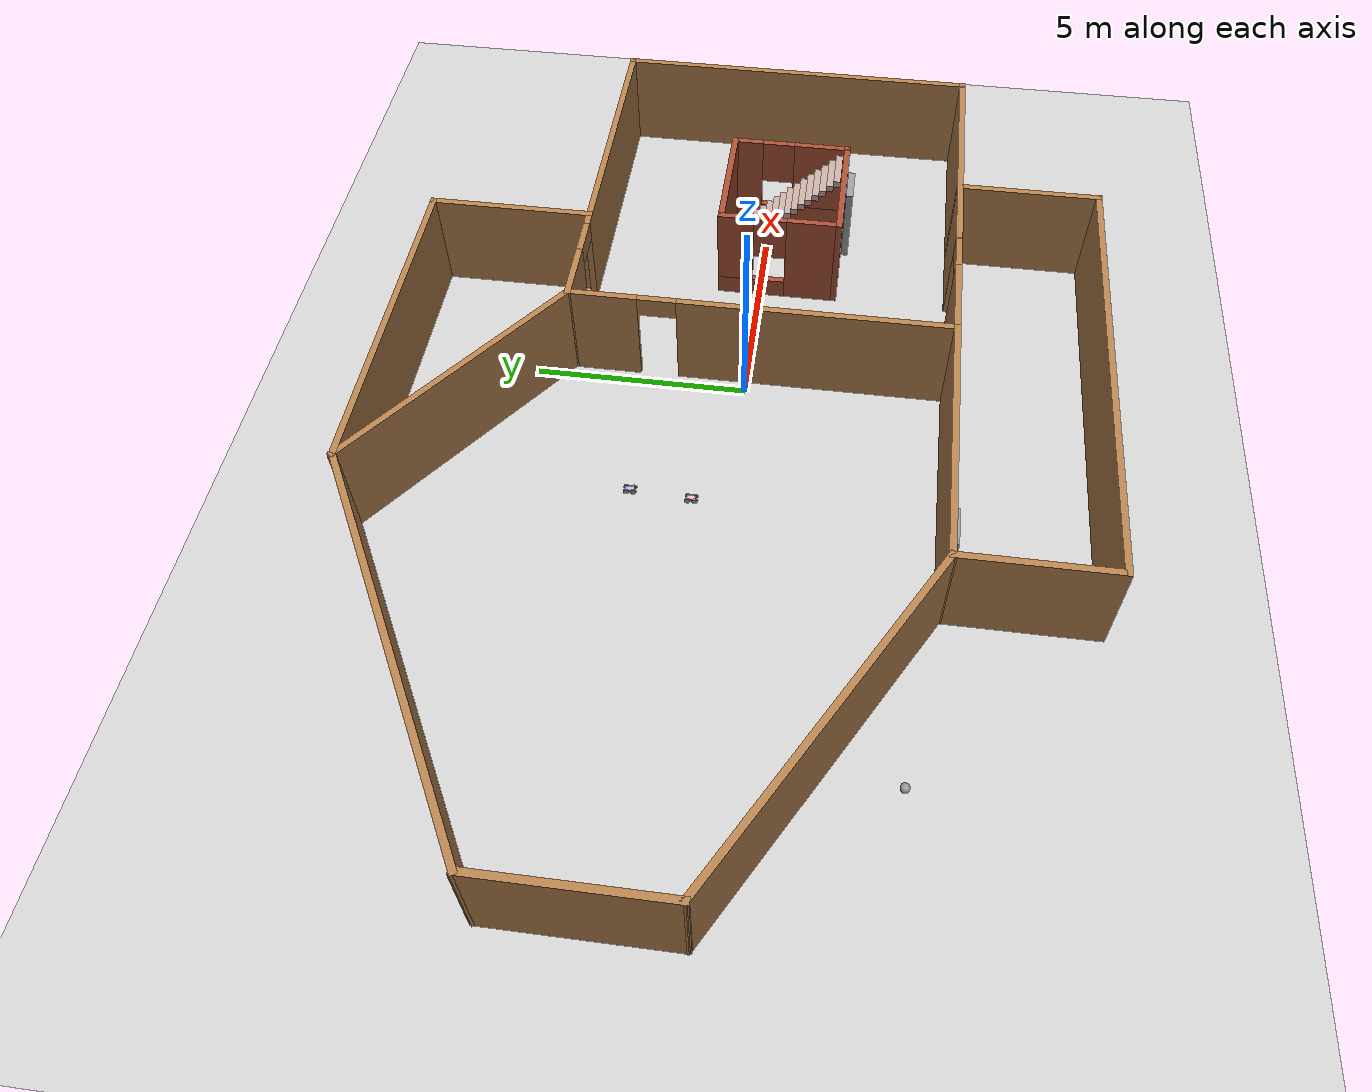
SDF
<sdf version="1.6">
 <world name="default">
  <plugin name="hello" filename="libhello.so"/>
  <light name="sun" type="directional">
   <pose>0 0 10 0 -0 0</pose>
   <diffuse>0.8 0.8 0.8 1</diffuse>
   <specular>0.2 0.2 0.2 1</specular>
   <attenuation>
    <range>1000</range>
    <constant>0.9</constant>
    <linear>0.01</linear>
    <quadratic>0.001</quadratic>
   </attenuation>
   <direction>-0.5 0.1 -0.9</direction>
  </light>
  <model name="ground_plane">
   <static>1</static>
   <link name="link">
    <collision name="collision">
     <geometry><plane><normal>0 0 1</normal><size>100 100</size></plane></geometry>
     <surface>
      <contact><collide_bitmask>65535</collide_bitmask></contact>
      <friction><ode><mu>100</mu><mu2>50</mu2></ode></friction>
     </surface>
    </collision>
    <visual name="visual">
     <cast_shadows>0</cast_shadows>
     <geometry><plane><normal>0 0 1</normal><size>100 100</size></plane></geometry>
     <material>
      <script><uri>file://media/materials/scripts/gazebo.material</uri><name>Gazebo/Grey</name></script>
     </material>
    </visual>
   </link>
  </model>
  <gravity>0 0 -9.8</gravity>
  <magnetic_field>6e-06 2.3e-05 -4.2e-05</magnetic_field>
  <atmosphere type="adiabatic"/>
  <physics name="default_physics" default="0" type="ode">
   <max_step_size>0.001</max_step_size>
   <real_time_factor>1</real_time_factor>
   <real_time_update_rate>1000</real_time_update_rate>
  </physics>
  <scene><ambient>0.4 0.4 0.4 1</ambient><background>0.7 0.7 0.7 1</background><shadows>1</shadows></scene>
  <spherical_coordinates>
   <surface_model>EARTH_WGS84</surface_model>
   <latitude_deg>0</latitude_deg>
   <longitude_deg>0</longitude_deg>
   <elevation>0</elevation>
   <heading_deg>0</heading_deg>
  </spherical_coordinates>
  <model name="Building">
   <pose>-1.87722 -0.00646 0 0 -0 0</pose>
   <link name="Door_1">
    <collision name="Door_1_Collision">
     <geometry><box><size>0.9 0.17 2</size></box></geometry>
     <pose>0 0 1 0 -0 0</pose>
    </collision>
    <visual name="Door_1_Visual">
     <pose>0 0 1 0 -0 0</pose>
     <geometry><box><size>0.9 0.17 2</size></box></geometry>
     <material>
      <script><uri>file://media/materials/scripts/gazebo.material</uri><name>Gazebo/Grey</name></script>
     </material>
    </visual>
    <pose>-2.80708 -4.7902 0 0 -0 0</pose>
   </link>
   <link name="Door_4">
    <collision name="Door_4_Collision">
     <geometry><box><size>0.9 0.17 2</size></box></geometry>
     <pose>0 0 1 0 -0 0</pose>
    </collision>
    <visual name="Door_4_Visual">
     <pose>0 0 1 0 -0 0</pose>
     <geometry><box><size>0.9 0.17 2</size></box></geometry>
     <material>
      <script><uri>file://media/materials/scripts/gazebo.material</uri><name>Gazebo/Grey</name></script>
     </material>
    </visual>
    <pose>7.32441 -2.01108 0 0 -0 0</pose>
   </link>
   <link name="Stairs_0">
    <visual name="Stairs_0_Visual_0">
     <pose>7.28923 0.709279 0.083333 0 -0 0</pose>
     <geometry><box><size>1 0.170012 0.166667</size></box></geometry>
     <material>
      <script><uri>file://media/materials/scripts/gazebo.material</uri><name>Gazebo/Grey</name></script>
      <ambient>0.760784 0.662745 0.627451 1</ambient>
     </material>
     <meta><layer>0</layer></meta>
    </visual>
    <collision name="Stairs_0_Collision_0">
     <geometry><box><size>1 0.170012 0.166667</size></box></geometry>
     <pose>7.28923 0.709279 0.083333 0 -0 0</pose>
    </collision>
    <visual name="Stairs_0_Visual_1">
     <pose>7.28923 0.539268 0.25 0 -0 0</pose>
     <geometry><box><size>1 0.170012 0.166667</size></box></geometry>
     <material>
      <script><uri>file://media/materials/scripts/gazebo.material</uri><name>Gazebo/Grey</name></script>
      <ambient>0.760784 0.662745 0.627451 1</ambient>
     </material>
     <meta><layer>0</layer></meta>
    </visual>
    <collision name="Stairs_0_Collision_1">
     <geometry><box><size>1 0.170012 0.166667</size></box></geometry>
     <pose>7.28923 0.539268 0.25 0 -0 0</pose>
    </collision>
    <visual name="Stairs_0_Visual_2">
     <pose>7.28923 0.369256 0.416667 0 -0 0</pose>
     <geometry><box><size>1 0.170012 0.166667</size></box></geometry>
     <material>
      <script><uri>file://media/materials/scripts/gazebo.material</uri><name>Gazebo/Grey</name></script>
      <ambient>0.760784 0.662745 0.627451 1</ambient>
     </material>
     <meta><layer>0</layer></meta>
    </visual>
    <collision name="Stairs_0_Collision_2">
     <geometry><box><size>1 0.170012 0.166667</size></box></geometry>
     <pose>7.28923 0.369256 0.416667 0 -0 0</pose>
    </collision>
    <visual name="Stairs_0_Visual_3">
     <pose>7.28923 0.199244 0.583333 0 -0 0</pose>
     <geometry><box><size>1 0.170012 0.166667</size></box></geometry>
     <material>
      <script><uri>file://media/materials/scripts/gazebo.material</uri><name>Gazebo/Grey</name></script>
      <ambient>0.760784 0.662745 0.627451 1</ambient>
     </material>
     <meta><layer>0</layer></meta>
    </visual>
    <collision name="Stairs_0_Collision_3">
     <geometry><box><size>1 0.170012 0.166667</size></box></geometry>
     <pose>7.28923 0.199244 0.583333 0 -0 0</pose>
    </collision>
    <visual name="Stairs_0_Visual_4">
     <pose>7.28923 0.029233 0.75 0 -0 0</pose>
     <geometry><box><size>1 0.170012 0.166667</size></box></geometry>
     <material>
      <script><uri>file://media/materials/scripts/gazebo.material</uri><name>Gazebo/Grey</name></script>
      <ambient>0.760784 0.662745 0.627451 1</ambient>
     </material>
     <meta><layer>0</layer></meta>
    </visual>
    <collision name="Stairs_0_Collision_4">
     <geometry><box><size>1 0.170012 0.166667</size></box></geometry>
     <pose>7.28923 0.029233 0.75 0 -0 0</pose>
    </collision>
    <visual name="Stairs_0_Visual_5">
     <pose>7.28923 -0.140779 0.916667 0 -0 0</pose>
     <geometry><box><size>1 0.170012 0.166667</size></box></geometry>
     <material>
      <script><uri>file://media/materials/scripts/gazebo.material</uri><name>Gazebo/Grey</name></script>
      <ambient>0.760784 0.662745 0.627451 1</ambient>
     </material>
     <meta><layer>0</layer></meta>
    </visual>
    <collision name="Stairs_0_Collision_5">
     <geometry><box><size>1 0.170012 0.166667</size></box></geometry>
     <pose>7.28923 -0.140779 0.916667 0 -0 0</pose>
    </collision>
    <visual name="Stairs_0_Visual_6">
     <pose>7.28923 -0.31079 1.08333 0 -0 0</pose>
     <geometry><box><size>1 0.170012 0.166667</size></box></geometry>
     <material>
      <script><uri>file://media/materials/scripts/gazebo.material</uri><name>Gazebo/Grey</name></script>
      <ambient>0.760784 0.662745 0.627451 1</ambient>
     </material>
     <meta><layer>0</layer></meta>
    </visual>
    <collision name="Stairs_0_Collision_6">
     <geometry><box><size>1 0.170012 0.166667</size></box></geometry>
     <pose>7.28923 -0.31079 1.08333 0 -0 0</pose>
    </collision>
    <visual name="Stairs_0_Visual_7">
     <pose>7.28923 -0.480802 1.25 0 -0 0</pose>
     <geometry><box><size>1 0.170012 0.166667</size></box></geometry>
     <material>
      <script><uri>file://media/materials/scripts/gazebo.material</uri><name>Gazebo/Grey</name></script>
      <ambient>0.760784 0.662745 0.627451 1</ambient>
     </material>
     <meta><layer>0</layer></meta>
    </visual>
    <collision name="Stairs_0_Collision_7">
     <geometry><box><size>1 0.170012 0.166667</size></box></geometry>
     <pose>7.28923 -0.480802 1.25 0 -0 0</pose>
    </collision>
    <visual name="Stairs_0_Visual_8">
     <pose>7.28923 -0.650813 1.41667 0 -0 0</pose>
     <geometry><box><size>1 0.170012 0.166667</size></box></geometry>
     <material>
      <script><uri>file://media/materials/scripts/gazebo.material</uri><name>Gazebo/Grey</name></script>
      <ambient>0.760784 0.662745 0.627451 1</ambient>
     </material>
     <meta><layer>0</layer></meta>
    </visual>
    <collision name="Stairs_0_Collision_8">
     <geometry><box><size>1 0.170012 0.166667</size></box></geometry>
     <pose>7.28923 -0.650813 1.41667 0 -0 0</pose>
    </collision>
    <visual name="Stairs_0_Visual_9">
     <pose>7.28923 -0.820825 1.58333 0 -0 0</pose>
     <geometry><box><size>1 0.170012 0.166667</size></box></geometry>
     <material>
      <script><uri>file://media/materials/scripts/gazebo.material</uri><name>Gazebo/Grey</name></script>
      <ambient>0.760784 0.662745 0.627451 1</ambient>
     </material>
     <meta><layer>0</layer></meta>
    </visual>
    <collision name="Stairs_0_Collision_9">
     <geometry><box><size>1 0.170012 0.166667</size></box></geometry>
     <pose>7.28923 -0.820825 1.58333 0 -0 0</pose>
    </collision>
    <visual name="Stairs_0_Visual_10">
     <pose>7.28923 -0.990836 1.75 0 -0 0</pose>
     <geometry><box><size>1 0.170012 0.166667</size></box></geometry>
     <material>
      <script><uri>file://media/materials/scripts/gazebo.material</uri><name>Gazebo/Grey</name></script>
      <ambient>0.760784 0.662745 0.627451 1</ambient>
     </material>
     <meta><layer>0</layer></meta>
    </visual>
    <collision name="Stairs_0_Collision_10">
     <geometry><box><size>1 0.170012 0.166667</size></box></geometry>
     <pose>7.28923 -0.990836 1.75 0 -0 0</pose>
    </collision>
    <visual name="Stairs_0_Visual_11">
     <pose>7.28923 -1.16085 1.91667 0 -0 0</pose>
     <geometry><box><size>1 0.170012 0.166667</size></box></geometry>
     <material>
      <script><uri>file://media/materials/scripts/gazebo.material</uri><name>Gazebo/Grey</name></script>
      <ambient>0.760784 0.662745 0.627451 1</ambient>
     </material>
     <meta><layer>0</layer></meta>
    </visual>
    <collision name="Stairs_0_Collision_11">
     <geometry><box><size>1 0.170012 0.166667</size></box></geometry>
     <pose>7.28923 -1.16085 1.91667 0 -0 0</pose>
    </collision>
    <visual name="Stairs_0_Visual_12">
     <pose>7.28923 -1.33086 2.08333 0 -0 0</pose>
     <geometry><box><size>1 0.170012 0.166667</size></box></geometry>
     <material>
      <script><uri>file://media/materials/scripts/gazebo.material</uri><name>Gazebo/Grey</name></script>
      <ambient>0.760784 0.662745 0.627451 1</ambient>
     </material>
     <meta><layer>0</layer></meta>
    </visual>
    <collision name="Stairs_0_Collision_12">
     <geometry><box><size>1 0.170012 0.166667</size></box></geometry>
     <pose>7.28923 -1.33086 2.08333 0 -0 0</pose>
    </collision>
    <visual name="Stairs_0_Visual_13">
     <pose>7.28923 -1.50087 2.25 0 -0 0</pose>
     <geometry><box><size>1 0.170012 0.166667</size></box></geometry>
     <material>
      <script><uri>file://media/materials/scripts/gazebo.material</uri><name>Gazebo/Grey</name></script>
      <ambient>0.760784 0.662745 0.627451 1</ambient>
     </material>
     <meta><layer>0</layer></meta>
    </visual>
    <collision name="Stairs_0_Collision_13">
     <geometry><box><size>1 0.170012 0.166667</size></box></geometry>
     <pose>7.28923 -1.50087 2.25 0 -0 0</pose>
    </collision>
    <visual name="Stairs_0_Visual_14">
     <pose>7.28923 -1.67088 2.41667 0 -0 0</pose>
     <geometry><box><size>1 0.170012 0.166667</size></box></geometry>
     <material>
      <script><uri>file://media/materials/scripts/gazebo.material</uri><name>Gazebo/Grey</name></script>
      <ambient>0.760784 0.662745 0.627451 1</ambient>
     </material>
     <meta><layer>0</layer></meta>
    </visual>
    <collision name="Stairs_0_Collision_14">
     <geometry><box><size>1 0.170012 0.166667</size></box></geometry>
     <pose>7.28923 -1.67088 2.41667 0 -0 0</pose>
    </collision>
   </link>
   <link name="Wall_0">
    <collision name="Wall_0_Collision">
     <geometry><box><size>3 0.15 2.5</size></box></geometry>
     <pose>0 0 1.25 0 -0 0</pose>
    </collision>
    <visual name="Wall_0_Visual">
     <pose>0 0 1.25 0 -0 0</pose>
     <geometry><box><size>3 0.15 2.5</size></box></geometry>
     <material>
      <script><uri>file://media/materials/scripts/gazebo.material</uri><name>Gazebo/Bricks</name></script>
      <ambient>1 1 1 1</ambient>
     </material>
     <meta><layer>0</layer></meta>
    </visual>
    <pose>6.6682 1.00802 0 0 -0 0</pose>
   </link>
   <link name="Wall_1">
    <pose>8.0932 -0.416979 0 0 0 -1.5708</pose>
    <visual name="Wall_1_Visual_0">
     <pose>-1.10278 0 1.25 0 -0 0</pose>
     <geometry><box><size>0.794446 0.15 2.5</size></box></geometry>
     <material>
      <script><uri>file://media/materials/scripts/gazebo.material</uri><name>Gazebo/Bricks</name></script>
      <ambient>1 1 1 1</ambient>
     </material>
     <meta><layer>0</layer></meta>
    </visual>
    <collision name="Wall_1_Collision_0">
     <geometry><box><size>0.794446 0.15 2.5</size></box></geometry>
     <pose>-1.10278 0 1.25 0 -0 0</pose>
    </collision>
    <visual name="Wall_1_Visual_1">
     <pose>0.397223 0 0.25 0 -0 0</pose>
     <geometry><box><size>2.20555 0.15 0.5</size></box></geometry>
     <material>
      <script><uri>file://media/materials/scripts/gazebo.material</uri><name>Gazebo/Bricks</name></script>
      <ambient>1 1 1 1</ambient>
     </material>
     <meta><layer>0</layer></meta>
    </visual>
    <collision name="Wall_1_Collision_1">
     <geometry><box><size>2.20555 0.15 0.5</size></box></geometry>
     <pose>0.397223 0 0.25 0 -0 0</pose>
    </collision>
    <visual name="Wall_1_Visual_2">
     <pose>0.797223 0 1.5 0 -0 0</pose>
     <geometry><box><size>1.40555 0.15 2</size></box></geometry>
     <material>
      <script><uri>file://media/materials/scripts/gazebo.material</uri><name>Gazebo/Bricks</name></script>
      <ambient>1 1 1 1</ambient>
     </material>
     <meta><layer>0</layer></meta>
    </visual>
    <collision name="Wall_1_Collision_2">
     <geometry><box><size>1.40555 0.15 2</size></box></geometry>
     <pose>0.797223 0 1.5 0 -0 0</pose>
    </collision>
    <visual name="Wall_1_Visual_3">
     <pose>-0.305554 0 1.9 0 -0 0</pose>
     <geometry><box><size>0.8 0.15 1.2</size></box></geometry>
     <material>
      <script><uri>file://media/materials/scripts/gazebo.material</uri><name>Gazebo/Bricks</name></script>
      <ambient>1 1 1 1</ambient>
     </material>
     <meta><layer>0</layer></meta>
    </visual>
    <collision name="Wall_1_Collision_3">
     <geometry><box><size>0.8 0.15 1.2</size></box></geometry>
     <pose>-0.305554 0 1.9 0 -0 0</pose>
    </collision>
   </link>
   <link name="Wall_16">
    <collision name="Wall_16_Collision">
     <geometry><box><size>6 0.15 2.5</size></box></geometry>
     <pose>0 0 1.25 0 -0 0</pose>
    </collision>
    <visual name="Wall_16_Visual">
     <pose>0 0 1.25 0 -0 0</pose>
     <geometry><box><size>6 0.15 2.5</size></box></geometry>
     <material>
      <script><uri>file://media/materials/scripts/gazebo.material</uri><name>Gazebo/Wood</name></script>
      <ambient>1 1 1 1</ambient>
     </material>
     <meta><layer>0</layer></meta>
    </visual>
    <pose>8.1682 -4.69198 0 0 -0 0</pose>
   </link>
   <link name="Wall_17">
    <collision name="Wall_17_Collision">
     <geometry><box><size>9 0.15 2.5</size></box></geometry>
     <pose>0 0 1.25 0 -0 0</pose>
    </collision>
    <visual name="Wall_17_Visual">
     <pose>0 0 1.25 0 -0 0</pose>
     <geometry><box><size>9 0.15 2.5</size></box></geometry>
     <material>
      <script><uri>file://media/materials/scripts/gazebo.material</uri><name>Gazebo/Wood</name></script>
      <ambient>1 1 1 1</ambient>
     </material>
     <meta><layer>0</layer></meta>
    </visual>
    <pose>11.0932 -0.266979 0 0 -0 1.5708</pose>
   </link>
   <link name="Wall_18">
    <pose>6.6682 4.15802 0 0 -0 3.14159</pose>
    <visual name="Wall_18_Visual_0">
     <pose>-1.18488 0 1.25 0 -0 0</pose>
     <geometry><box><size>6.63023 0.15 2.5</size></box></geometry>
     <material>
      <script><uri>file://media/materials/scripts/gazebo.material</uri><name>Gazebo/Wood</name></script>
      <ambient>1 1 1 1</ambient>
     </material>
     <meta><layer>0</layer></meta>
    </visual>
    <collision name="Wall_18_Collision_0">
     <geometry><box><size>6.63023 0.15 2.5</size></box></geometry>
     <pose>-1.18488 0 1.25 0 -0 0</pose>
    </collision>
    <visual name="Wall_18_Visual_1">
     <pose>3.76512 0 1.25 0 -0 0</pose>
     <geometry><box><size>1.46976 0.15 2.5</size></box></geometry>
     <material>
      <script><uri>file://media/materials/scripts/gazebo.material</uri><name>Gazebo/Wood</name></script>
      <ambient>1 1 1 1</ambient>
     </material>
     <meta><layer>0</layer></meta>
    </visual>
    <collision name="Wall_18_Collision_1">
     <geometry><box><size>1.46976 0.15 2.5</size></box></geometry>
     <pose>3.76512 0 1.25 0 -0 0</pose>
    </collision>
    <visual name="Wall_18_Visual_2">
     <pose>2.58024 0 2.25 0 -0 0</pose>
     <geometry><box><size>0.9 0.15 0.5</size></box></geometry>
     <material>
      <script><uri>file://media/materials/scripts/gazebo.material</uri><name>Gazebo/Wood</name></script>
      <ambient>1 1 1 1</ambient>
     </material>
     <meta><layer>0</layer></meta>
    </visual>
    <collision name="Wall_18_Collision_2">
     <geometry><box><size>0.9 0.15 0.5</size></box></geometry>
     <pose>2.58024 0 2.25 0 -0 0</pose>
    </collision>
   </link>
   <link name="Wall_19">
    <pose>2.2432 -0.266979 0 0 0 -1.5708</pose>
    <visual name="Wall_19_Visual_0">
     <pose>-3.66091 0 1.25 0 -0 0</pose>
     <geometry><box><size>1.67818 0.15 2.5</size></box></geometry>
     <material>
      <script><uri>file://media/materials/scripts/gazebo.material</uri><name>Gazebo/Wood</name></script>
      <ambient>1 1 1 1</ambient>
     </material>
     <meta><layer>0</layer></meta>
    </visual>
    <collision name="Wall_19_Collision_0">
     <geometry><box><size>1.67818 0.15 2.5</size></box></geometry>
     <pose>-3.66091 0 1.25 0 -0 0</pose>
    </collision>
    <visual name="Wall_19_Visual_1">
     <pose>1.28909 0 1.25 0 -0 0</pose>
     <geometry><box><size>6.42182 0.15 2.5</size></box></geometry>
     <material>
      <script><uri>file://media/materials/scripts/gazebo.material</uri><name>Gazebo/Wood</name></script>
      <ambient>1 1 1 1</ambient>
     </material>
     <meta><layer>0</layer></meta>
    </visual>
    <collision name="Wall_19_Collision_1">
     <geometry><box><size>6.42182 0.15 2.5</size></box></geometry>
     <pose>1.28909 0 1.25 0 -0 0</pose>
    </collision>
    <visual name="Wall_19_Visual_2">
     <pose>-2.37182 0 2.25 0 -0 0</pose>
     <geometry><box><size>0.9 0.15 0.5</size></box></geometry>
     <material>
      <script><uri>file://media/materials/scripts/gazebo.material</uri><name>Gazebo/Wood</name></script>
      <ambient>1 1 1 1</ambient>
     </material>
     <meta><layer>0</layer></meta>
    </visual>
    <collision name="Wall_19_Collision_2">
     <geometry><box><size>0.9 0.15 0.5</size></box></geometry>
     <pose>-2.37182 0 2.25 0 -0 0</pose>
    </collision>
   </link>
   <link name="Wall_2">
    <collision name="Wall_2_Collision">
     <geometry><box><size>3 0.15 2.5</size></box></geometry>
     <pose>0 0 1.25 0 -0 0</pose>
    </collision>
    <visual name="Wall_2_Visual">
     <pose>0 0 1.25 0 -0 0</pose>
     <geometry><box><size>3 0.15 2.5</size></box></geometry>
     <material>
      <script><uri>file://media/materials/scripts/gazebo.material</uri><name>Gazebo/Bricks</name></script>
      <ambient>1 1 1 1</ambient>
     </material>
     <meta><layer>0</layer></meta>
    </visual>
    <pose>6.6682 -1.84198 0 0 -0 3.14159</pose>
   </link>
   <link name="Wall_20">
    <pose>3.6682 -4.69198 0 0 -0 0</pose>
    <visual name="Wall_20_Visual_0">
     <pose>-0.466098 0 1.25 0 -0 0</pose>
     <geometry><box><size>2.0678 0.15 2.5</size></box></geometry>
     <material>
      <script><uri>file://media/materials/scripts/gazebo.material</uri><name>Gazebo/Wood</name></script>
      <ambient>1 1 1 1</ambient>
     </material>
     <meta><layer>0</layer></meta>
    </visual>
    <collision name="Wall_20_Collision_0">
     <geometry><box><size>2.0678 0.15 2.5</size></box></geometry>
     <pose>-0.466098 0 1.25 0 -0 0</pose>
    </collision>
    <visual name="Wall_20_Visual_1">
     <pose>1.4839 0 1.25 0 -0 0</pose>
     <geometry><box><size>0.032196 0.15 2.5</size></box></geometry>
     <material>
      <script><uri>file://media/materials/scripts/gazebo.material</uri><name>Gazebo/Wood</name></script>
      <ambient>1 1 1 1</ambient>
     </material>
     <meta><layer>0</layer></meta>
    </visual>
    <collision name="Wall_20_Collision_1">
     <geometry><box><size>0.032196 0.15 2.5</size></box></geometry>
     <pose>1.4839 0 1.25 0 -0 0</pose>
    </collision>
    <visual name="Wall_20_Visual_2">
     <pose>1.0178 0 2.25 0 -0 0</pose>
     <geometry><box><size>0.9 0.15 0.5</size></box></geometry>
     <material>
      <script><uri>file://media/materials/scripts/gazebo.material</uri><name>Gazebo/Wood</name></script>
      <ambient>1 1 1 1</ambient>
     </material>
     <meta><layer>0</layer></meta>
    </visual>
    <collision name="Wall_20_Collision_2">
     <geometry><box><size>0.9 0.15 0.5</size></box></geometry>
     <pose>1.0178 0 2.25 0 -0 0</pose>
    </collision>
   </link>
   <link name="Wall_22">
    <collision name="Wall_22_Collision">
     <geometry><box><size>4 0.15 2.5</size></box></geometry>
     <pose>0 0 1.25 0 -0 0</pose>
    </collision>
    <visual name="Wall_22_Visual">
     <pose>0 0 1.25 0 -0 0</pose>
     <geometry><box><size>4 0.15 2.5</size></box></geometry>
     <material>
      <script><uri>file://media/materials/scripts/gazebo.material</uri><name>Gazebo/Wood</name></script>
      <ambient>1 1 1 1</ambient>
     </material>
     <meta><layer>0</layer></meta>
    </visual>
    <pose>4.88159 6.08505 0 0 -0 1.5708</pose>
   </link>
   <link name="Wall_23">
    <collision name="Wall_23_Collision">
     <geometry><box><size>8 0.15 2.5</size></box></geometry>
     <pose>0 0 1.25 0 -0 0</pose>
    </collision>
    <visual name="Wall_23_Visual">
     <pose>0 0 1.25 0 -0 0</pose>
     <geometry><box><size>8 0.15 2.5</size></box></geometry>
     <material>
      <script><uri>file://media/materials/scripts/gazebo.material</uri><name>Gazebo/Wood</name></script>
      <ambient>1 1 1 1</ambient>
     </material>
     <meta><layer>0</layer></meta>
    </visual>
    <pose>0.956593 8.01005 0 0 -0 3.14159</pose>
   </link>
   <link name="Wall_24">
    <collision name="Wall_24_Collision">
     <geometry><box><size>6.63066 0.15 2.5</size></box></geometry>
     <pose>0 0 1.25 0 -0 0</pose>
    </collision>
    <visual name="Wall_24_Visual">
     <pose>0 0 1.25 0 -0 0</pose>
     <geometry><box><size>6.63066 0.15 2.5</size></box></geometry>
     <material>
      <script><uri>file://media/materials/scripts/gazebo.material</uri><name>Gazebo/Wood</name></script>
      <ambient>1 1 1 1</ambient>
     </material>
     <meta><layer>0</layer></meta>
    </visual>
    <pose>-0.362605 6.08404 0 0 0 -0.636505</pose>
   </link>
   <link name="Wall_26">
    <collision name="Wall_26_Collision">
     <geometry><box><size>9.5 0.15 2.5</size></box></geometry>
     <pose>0 0 1.25 0 -0 0</pose>
    </collision>
    <visual name="Wall_26_Visual">
     <pose>0 0 1.25 0 -0 0</pose>
     <geometry><box><size>9.5 0.15 2.5</size></box></geometry>
     <material>
      <script><uri>file://media/materials/scripts/gazebo.material</uri><name>Gazebo/Wood</name></script>
      <ambient>1 1 1 1</ambient>
     </material>
     <meta><layer>0</layer></meta>
    </visual>
    <pose>-7.01708 5.67255 0 0 0 -2.61799</pose>
   </link>
   <link name="Wall_27">
    <collision name="Wall_27_Collision">
     <geometry><box><size>4 0.15 2.5</size></box></geometry>
     <pose>0 0 1.25 0 -0 0</pose>
    </collision>
    <visual name="Wall_27_Visual">
     <pose>0 0 1.25 0 -0 0</pose>
     <geometry><box><size>4 0.15 2.5</size></box></geometry>
     <material>
      <script><uri>file://media/materials/scripts/gazebo.material</uri><name>Gazebo/Wood</name></script>
      <ambient>1 1 1 1</ambient>
     </material>
     <meta><layer>0</layer></meta>
    </visual>
    <pose>-11.0657 1.41005 0 0 0 -1.5708</pose>
   </link>
   <link name="Wall_3">
    <pose>5.2432 -0.416979 0 0 -0 1.5708</pose>
    <visual name="Wall_3_Visual_0">
     <pose>-0.832402 0 1.25 0 -0 0</pose>
     <geometry><box><size>1.3352 0.15 2.5</size></box></geometry>
     <material>
      <script><uri>file://media/materials/scripts/gazebo.material</uri><name>Gazebo/Bricks</name></script>
      <ambient>1 1 1 1</ambient>
     </material>
     <meta><layer>0</layer></meta>
    </visual>
    <collision name="Wall_3_Collision_0">
     <geometry><box><size>1.3352 0.15 2.5</size></box></geometry>
     <pose>-0.832402 0 1.25 0 -0 0</pose>
    </collision>
    <visual name="Wall_3_Visual_1">
     <pose>0.667598 0 0.25 0 -0 0</pose>
     <geometry><box><size>1.6648 0.15 0.5</size></box></geometry>
     <material>
      <script><uri>file://media/materials/scripts/gazebo.material</uri><name>Gazebo/Bricks</name></script>
      <ambient>1 1 1 1</ambient>
     </material>
     <meta><layer>0</layer></meta>
    </visual>
    <collision name="Wall_3_Collision_1">
     <geometry><box><size>1.6648 0.15 0.5</size></box></geometry>
     <pose>0.667598 0 0.25 0 -0 0</pose>
    </collision>
    <visual name="Wall_3_Visual_2">
     <pose>1.0676 0 1.5 0 -0 0</pose>
     <geometry><box><size>0.864803 0.15 2</size></box></geometry>
     <material>
      <script><uri>file://media/materials/scripts/gazebo.material</uri><name>Gazebo/Bricks</name></script>
      <ambient>1 1 1 1</ambient>
     </material>
     <meta><layer>0</layer></meta>
    </visual>
    <collision name="Wall_3_Collision_2">
     <geometry><box><size>0.864803 0.15 2</size></box></geometry>
     <pose>1.0676 0 1.5 0 -0 0</pose>
    </collision>
    <visual name="Wall_3_Visual_3">
     <pose>0.235197 0 1.9 0 -0 0</pose>
     <geometry><box><size>0.8 0.15 1.2</size></box></geometry>
     <material>
      <script><uri>file://media/materials/scripts/gazebo.material</uri><name>Gazebo/Bricks</name></script>
      <ambient>1 1 1 1</ambient>
     </material>
     <meta><layer>0</layer></meta>
    </visual>
    <collision name="Wall_3_Collision_3">
     <geometry><box><size>0.8 0.15 1.2</size></box></geometry>
     <pose>0.235197 0 1.9 0 -0 0</pose>
    </collision>
   </link>
   <link name="Wall_30">
    <collision name="Wall_30_Collision">
     <geometry><box><size>6.22763 0.15 2.5</size></box></geometry>
     <pose>0 0 1.25 0 -0 0</pose>
    </collision>
    <visual name="Wall_30_Visual">
     <pose>0 0 1.25 0 -0 0</pose>
     <geometry><box><size>6.22763 0.15 2.5</size></box></geometry>
     <material>
      <script><uri>file://media/materials/scripts/gazebo.material</uri><name>Gazebo/Wood</name></script>
      <ambient>1 1 1 1</ambient>
     </material>
     <meta><layer>0</layer></meta>
    </visual>
    <pose>-0.795617 -4.69096 0 0 -0 3.14126</pose>
   </link>
   <link name="Wall_32">
    <collision name="Wall_32_Collision">
     <geometry><box><size>8.5 0.15 2.5</size></box></geometry>
     <pose>0 0 1.25 0 -0 0</pose>
    </collision>
    <visual name="Wall_32_Visual">
     <pose>0 0 1.25 0 -0 0</pose>
     <geometry><box><size>8.5 0.15 2.5</size></box></geometry>
     <material>
      <script><uri>file://media/materials/scripts/gazebo.material</uri><name>Gazebo/Wood</name></script>
      <ambient>1 1 1 1</ambient>
     </material>
     <meta><layer>0</layer></meta>
    </visual>
    <pose>-7.45009 -2.60245 0 0 0 -0.523599</pose>
   </link>
   <link name="Wall_39">
    <collision name="Wall_39_Collision">
     <geometry><box><size>3.5 0.15 2.5</size></box></geometry>
     <pose>0 0 1.25 0 -0 0</pose>
    </collision>
    <visual name="Wall_39_Visual">
     <pose>0 0 1.25 0 -0 0</pose>
     <geometry><box><size>3.5 0.15 2.5</size></box></geometry>
     <material>
      <script><uri>file://media/materials/scripts/gazebo.material</uri><name>Gazebo/Wood</name></script>
      <ambient>1 1 1 1</ambient>
     </material>
     <meta><layer>0</layer></meta>
    </visual>
    <pose>-3.83443 -6.36495 0 0 0 -1.5708</pose>
   </link>
   <link name="Wall_40">
    <collision name="Wall_40_Collision">
     <geometry><box><size>11 0.15 2.5</size></box></geometry>
     <pose>0 0 1.25 0 -0 0</pose>
    </collision>
    <visual name="Wall_40_Visual">
     <pose>0 0 1.25 0 -0 0</pose>
     <geometry><box><size>11 0.15 2.5</size></box></geometry>
     <material>
      <script><uri>file://media/materials/scripts/gazebo.material</uri><name>Gazebo/Wood</name></script>
      <ambient>1 1 1 1</ambient>
     </material>
     <meta><layer>0</layer></meta>
    </visual>
    <pose>1.59057 -8.03995 0 0 -0 0</pose>
   </link>
   <link name="Wall_42">
    <collision name="Wall_42_Collision">
     <geometry><box><size>3.5 0.15 2.5</size></box></geometry>
     <pose>0 0 1.25 0 -0 0</pose>
    </collision>
    <visual name="Wall_42_Visual">
     <pose>0 0 1.25 0 -0 0</pose>
     <geometry><box><size>3.5 0.15 2.5</size></box></geometry>
     <material>
      <script><uri>file://media/materials/scripts/gazebo.material</uri><name>Gazebo/Wood</name></script>
      <ambient>1 1 1 1</ambient>
     </material>
     <meta><layer>0</layer></meta>
    </visual>
    <pose>7.01557 -6.36495 0 0 -0 1.5708</pose>
   </link>
   <static>1</static>
  </model>
  <model name="carRobot_0">
   <link name="link_0">
    <pose>1e-06 -2e-06 0 0 -0 0</pose>
    <inertial>
     <mass>1</mass>
     <inertia>
      <ixx>0.166667</ixx>
      <ixy>0</ixy>
      <ixz>0</ixz>
      <iyy>0.166667</iyy>
      <iyz>0</iyz>
      <izz>0.166667</izz>
     </inertia>
    </inertial>
    <visual name="visual">
     <geometry><box><size>0.1 0.2 0.08</size></box></geometry>
     <material>
      <lighting>1</lighting>
      <script><uri>file://media/materials/scripts/gazebo.material</uri><name>Gazebo/Grey</name></script>
      <shader type="pixel"><normal_map>__default__</normal_map></shader>
      <ambient>1 0.3 0.3 1</ambient>
      <diffuse>1 0.7 0.7 1</diffuse>
      <specular>1 0.01 0.01 1</specular>
      <emissive>1 0 0 1</emissive>
     </material>
    </visual>
    <collision name="collision">
     <geometry><box><size>0.1 0.2 0.08</size></box></geometry>
     <surface>
      <friction>
       <ode><mu>1</mu><mu2>1</mu2><fdir1>0 0 0</fdir1><slip1>0</slip1><slip2>0</slip2></ode>
       <torsional>
        <coefficient>1</coefficient>
        <patch_radius>0</patch_radius>
        <surface_radius>0</surface_radius>
        <use_patch_radius>1</use_patch_radius>
        <ode><slip>0</slip></ode>
       </torsional>
      </friction>
      <bounce><restitution_coefficient>0</restitution_coefficient><threshold>1e+06</threshold></bounce>
      <contact>
       <collide_without_contact>0</collide_without_contact>
       <collide_without_contact_bitmask>1</collide_without_contact_bitmask>
       <collide_bitmask>1</collide_bitmask>
       <ode>
        <soft_cfm>0</soft_cfm>
        <soft_erp>0.2</soft_erp>
        <kp>1e+13</kp>
        <kd>1</kd>
        <max_vel>0.01</max_vel>
        <min_depth>0</min_depth>
       </ode>
       <bullet>
        <split_impulse>1</split_impulse>
        <split_impulse_penetration_threshold>-0.01</split_impulse_penetration_threshold>
        <soft_cfm>0</soft_cfm>
        <soft_erp>0.2</soft_erp>
        <kp>1e+13</kp>
        <kd>1</kd>
       </bullet>
      </contact>
     </surface>
    </collision>
   </link>
   <link name="link_1">
    <pose>0.064981 -0.079989 0 1.5707 0 1.5707</pose>
    <inertial>
     <mass>1</mass>
     <inertia><ixx>0.145833</ixx><ixy>0</ixy><ixz>0</ixz><iyy>0.145833</iyy><iyz>0</iyz><izz>0.125</izz></inertia>
    </inertial>
    <visual name="visual">
     <geometry><cylinder><radius>0.07</radius><length>0.03</length></cylinder></geometry>
     <material>
      <lighting>1</lighting>
      <script><uri>file://media/materials/scripts/gazebo.material</uri><name>Gazebo/Grey</name></script>
      <shader type="pixel"><normal_map>__default__</normal_map></shader>
      <ambient>0.3 0.3 0.3 1</ambient>
      <diffuse>0.7 0.7 0.7 1</diffuse>
      <specular>0.01 0.01 0.01 1</specular>
      <emissive>0 0 0 1</emissive>
     </material>
    </visual>
    <collision name="collision">
     <geometry><cylinder><radius>0.07</radius><length>0.03</length></cylinder></geometry>
     <surface>
      <friction>
       <ode><mu>1</mu><mu2>1</mu2><fdir1>0 0 0</fdir1><slip1>0</slip1><slip2>0</slip2></ode>
       <torsional>
        <coefficient>1</coefficient>
        <patch_radius>0</patch_radius>
        <surface_radius>0</surface_radius>
        <use_patch_radius>1</use_patch_radius>
        <ode><slip>0</slip></ode>
       </torsional>
      </friction>
      <bounce><restitution_coefficient>0</restitution_coefficient><threshold>1e+06</threshold></bounce>
      <contact>
       <collide_without_contact>0</collide_without_contact>
       <collide_without_contact_bitmask>1</collide_without_contact_bitmask>
       <collide_bitmask>1</collide_bitmask>
       <ode>
        <soft_cfm>0</soft_cfm>
        <soft_erp>0.2</soft_erp>
        <kp>1e+13</kp>
        <kd>1</kd>
        <max_vel>0.01</max_vel>
        <min_depth>0</min_depth>
       </ode>
       <bullet>
        <split_impulse>1</split_impulse>
        <split_impulse_penetration_threshold>-0.01</split_impulse_penetration_threshold>
        <soft_cfm>0</soft_cfm>
        <soft_erp>0.2</soft_erp>
        <kp>1e+13</kp>
        <kd>1</kd>
       </bullet>
      </contact>
     </surface>
    </collision>
   </link>
   <link name="link_1_clone">
    <pose>0.064988 0.079997 0 1.5707 0 1.5707</pose>
    <inertial>
     <mass>1</mass>
     <inertia><ixx>0.145833</ixx><ixy>0</ixy><ixz>0</ixz><iyy>0.145833</iyy><iyz>0</iyz><izz>0.125</izz></inertia>
    </inertial>
    <visual name="visual">
     <geometry><cylinder><radius>0.07</radius><length>0.03</length></cylinder></geometry>
     <material>
      <lighting>1</lighting>
      <script><uri>file://media/materials/scripts/gazebo.material</uri><name>Gazebo/Grey</name></script>
      <shader type="pixel"><normal_map>__default__</normal_map></shader>
      <ambient>0.3 0.3 0.3 1</ambient>
      <diffuse>0.7 0.7 0.7 1</diffuse>
      <specular>0.01 0.01 0.01 1</specular>
      <emissive>0 0 0 1</emissive>
     </material>
    </visual>
    <collision name="collision">
     <geometry><cylinder><radius>0.07</radius><length>0.03</length></cylinder></geometry>
     <surface>
      <friction>
       <ode><mu>1</mu><mu2>1</mu2><fdir1>0 0 0</fdir1><slip1>0</slip1><slip2>0</slip2></ode>
       <torsional>
        <coefficient>1</coefficient>
        <patch_radius>0</patch_radius>
        <surface_radius>0</surface_radius>
        <use_patch_radius>1</use_patch_radius>
        <ode><slip>0</slip></ode>
       </torsional>
      </friction>
      <bounce><restitution_coefficient>0</restitution_coefficient><threshold>1e+06</threshold></bounce>
      <contact>
       <collide_without_contact>0</collide_without_contact>
       <collide_without_contact_bitmask>1</collide_without_contact_bitmask>
       <collide_bitmask>1</collide_bitmask>
       <ode>
        <soft_cfm>0</soft_cfm>
        <soft_erp>0.2</soft_erp>
        <kp>1e+13</kp>
        <kd>1</kd>
        <max_vel>0.01</max_vel>
        <min_depth>0</min_depth>
       </ode>
       <bullet>
        <split_impulse>1</split_impulse>
        <split_impulse_penetration_threshold>-0.01</split_impulse_penetration_threshold>
        <soft_cfm>0</soft_cfm>
        <soft_erp>0.2</soft_erp>
        <kp>1e+13</kp>
        <kd>1</kd>
       </bullet>
      </contact>
     </surface>
    </collision>
   </link>
   <link name="link_1_clone_0">
    <pose>-0.064986 0.079997 -0 1.5707 0 1.5707</pose>
    <inertial>
     <mass>1</mass>
     <inertia><ixx>0.145833</ixx><ixy>0</ixy><ixz>0</ixz><iyy>0.145833</iyy><iyz>0</iyz><izz>0.125</izz></inertia>
    </inertial>
    <visual name="visual">
     <geometry><cylinder><radius>0.07</radius><length>0.03</length></cylinder></geometry>
     <material>
      <lighting>1</lighting>
      <script><uri>file://media/materials/scripts/gazebo.material</uri><name>Gazebo/Grey</name></script>
      <shader type="pixel"><normal_map>__default__</normal_map></shader>
      <ambient>0.3 0.3 0.3 1</ambient>
      <diffuse>0.7 0.7 0.7 1</diffuse>
      <specular>0.01 0.01 0.01 1</specular>
      <emissive>0 0 0 1</emissive>
     </material>
    </visual>
    <collision name="collision">
     <geometry><cylinder><radius>0.07</radius><length>0.03</length></cylinder></geometry>
     <surface>
      <friction>
       <ode><mu>1</mu><mu2>1</mu2><fdir1>0 0 0</fdir1><slip1>0</slip1><slip2>0</slip2></ode>
       <torsional>
        <coefficient>1</coefficient>
        <patch_radius>0</patch_radius>
        <surface_radius>0</surface_radius>
        <use_patch_radius>1</use_patch_radius>
        <ode><slip>0</slip></ode>
       </torsional>
      </friction>
      <bounce><restitution_coefficient>0</restitution_coefficient><threshold>1e+06</threshold></bounce>
      <contact>
       <collide_without_contact>0</collide_without_contact>
       <collide_without_contact_bitmask>1</collide_without_contact_bitmask>
       <collide_bitmask>1</collide_bitmask>
       <ode>
        <soft_cfm>0</soft_cfm>
        <soft_erp>0.2</soft_erp>
        <kp>1e+13</kp>
        <kd>1</kd>
        <max_vel>0.01</max_vel>
        <min_depth>0</min_depth>
       </ode>
       <bullet>
        <split_impulse>1</split_impulse>
        <split_impulse_penetration_threshold>-0.01</split_impulse_penetration_threshold>
        <soft_cfm>0</soft_cfm>
        <soft_erp>0.2</soft_erp>
        <kp>1e+13</kp>
        <kd>1</kd>
       </bullet>
      </contact>
     </surface>
    </collision>
   </link>
   <link name="link_1_clone_1">
    <pose>-0.064986 -0.080001 -0 1.5707 0 1.5707</pose>
    <inertial>
     <mass>1</mass>
     <inertia><ixx>0.145833</ixx><ixy>0</ixy><ixz>0</ixz><iyy>0.145833</iyy><iyz>0</iyz><izz>0.125</izz></inertia>
    </inertial>
    <visual name="visual">
     <geometry><cylinder><radius>0.07</radius><length>0.03</length></cylinder></geometry>
     <material>
      <lighting>1</lighting>
      <script><uri>file://media/materials/scripts/gazebo.material</uri><name>Gazebo/Grey</name></script>
      <shader type="pixel"><normal_map>__default__</normal_map></shader>
      <ambient>0.3 0.3 0.3 1</ambient>
      <diffuse>0.7 0.7 0.7 1</diffuse>
      <specular>0.01 0.01 0.01 1</specular>
      <emissive>0 0 0 1</emissive>
     </material>
    </visual>
    <collision name="collision">
     <geometry><cylinder><radius>0.07</radius><length>0.03</length></cylinder></geometry>
     <surface>
      <friction>
       <ode><mu>1</mu><mu2>1</mu2><fdir1>0 0 0</fdir1><slip1>0</slip1><slip2>0</slip2></ode>
       <torsional>
        <coefficient>1</coefficient>
        <patch_radius>0</patch_radius>
        <surface_radius>0</surface_radius>
        <use_patch_radius>1</use_patch_radius>
        <ode><slip>0</slip></ode>
       </torsional>
      </friction>
      <bounce><restitution_coefficient>0</restitution_coefficient><threshold>1e+06</threshold></bounce>
      <contact>
       <collide_without_contact>0</collide_without_contact>
       <collide_without_contact_bitmask>1</collide_without_contact_bitmask>
       <collide_bitmask>1</collide_bitmask>
       <ode>
        <soft_cfm>0</soft_cfm>
        <soft_erp>0.2</soft_erp>
        <kp>1e+13</kp>
        <kd>1</kd>
        <max_vel>0.01</max_vel>
        <min_depth>0</min_depth>
       </ode>
       <bullet>
        <split_impulse>1</split_impulse>
        <split_impulse_penetration_threshold>-0.01</split_impulse_penetration_threshold>
        <soft_cfm>0</soft_cfm>
        <soft_erp>0.2</soft_erp>
        <kp>1e+13</kp>
        <kd>1</kd>
       </bullet>
      </contact>
     </surface>
    </collision>
   </link>
   <joint name="link_0_JOINT_5" type="revolute">
    <parent>link_0</parent>
    <child>link_1</child>
    <axis>
     <xyz>0 0 1</xyz>
     <use_parent_model_frame>0</use_parent_model_frame>
     <limit>
      <lower>-1.79769e+308</lower>
      <upper>1.79769e+308</upper>
      <effort>-1</effort>
      <velocity>-1</velocity>
     </limit>
     <dynamics>
      <spring_reference>0</spring_reference>
      <spring_stiffness>0</spring_stiffness>
      <damping>0</damping>
      <friction>0</friction>
     </dynamics>
    </axis>
    <physics>
     <ode><limit><cfm>0</cfm><erp>0.2</erp></limit><suspension><cfm>0</cfm><erp>0.2</erp></suspension></ode>
    </physics>
   </joint>
   <joint name="link_0_JOINT_7" type="revolute">
    <parent>link_0</parent>
    <child>link_1_clone_0</child>
    <axis>
     <xyz>0 0 1</xyz>
     <use_parent_model_frame>0</use_parent_model_frame>
     <limit>
      <lower>-1.79769e+308</lower>
      <upper>1.79769e+308</upper>
      <effort>-1</effort>
      <velocity>-1</velocity>
     </limit>
     <dynamics>
      <spring_reference>0</spring_reference>
      <spring_stiffness>0</spring_stiffness>
      <damping>0</damping>
      <friction>0</friction>
     </dynamics>
    </axis>
    <physics>
     <ode><limit><cfm>0</cfm><erp>0.2</erp></limit><suspension><cfm>0</cfm><erp>0.2</erp></suspension></ode>
    </physics>
   </joint>
   <joint name="link_0_JOINT_8" type="revolute">
    <parent>link_0</parent>
    <child>link_1_clone_1</child>
    <axis>
     <xyz>0 0 1</xyz>
     <use_parent_model_frame>0</use_parent_model_frame>
     <limit>
      <lower>-1.79769e+308</lower>
      <upper>1.79769e+308</upper>
      <effort>-1</effort>
      <velocity>-1</velocity>
     </limit>
     <dynamics>
      <spring_reference>0</spring_reference>
      <spring_stiffness>0</spring_stiffness>
      <damping>0</damping>
      <friction>0</friction>
     </dynamics>
    </axis>
    <physics>
     <ode><limit><cfm>0</cfm><erp>0.2</erp></limit><suspension><cfm>0</cfm><erp>0.2</erp></suspension></ode>
    </physics>
   </joint>
   <joint name="link_0_JOINT_9" type="revolute">
    <parent>link_0</parent>
    <child>link_1_clone</child>
    <axis>
     <xyz>0 0 1</xyz>
     <use_parent_model_frame>0</use_parent_model_frame>
     <limit>
      <lower>-1.79769e+308</lower>
      <upper>1.79769e+308</upper>
      <effort>-1</effort>
      <velocity>-1</velocity>
     </limit>
     <dynamics>
      <spring_reference>0</spring_reference>
      <spring_stiffness>0</spring_stiffness>
      <damping>0</damping>
      <friction>0</friction>
     </dynamics>
    </axis>
    <physics>
     <ode><limit><cfm>0</cfm><erp>0.2</erp></limit><suspension><cfm>0</cfm><erp>0.2</erp></suspension></ode>
    </physics>
   </joint>
   <static>0</static>
   <pose>-3.31869 0.812244 0.070002 5e-06 -5e-06 0.059059</pose>
  </model>
  <model name="carRobot">
   <link name="link_0">
    <pose>1e-06 -2e-06 -0 0 -0 0</pose>
    <inertial>
     <mass>1</mass>
     <inertia>
      <ixx>0.166667</ixx>
      <ixy>0</ixy>
      <ixz>0</ixz>
      <iyy>0.166667</iyy>
      <iyz>0</iyz>
      <izz>0.166667</izz>
     </inertia>
    </inertial>
    <visual name="visual">
     <geometry><box><size>0.1 0.2 0.08</size></box></geometry>
     <material>
      <lighting>1</lighting>
      <script><uri>file://media/materials/scripts/gazebo.material</uri><name>Gazebo/Grey</name></script>
      <shader type="pixel"><normal_map>__default__</normal_map></shader>
      <ambient>0.3 0.3 1 1</ambient>
      <diffuse>0.7 0.7 1 1</diffuse>
      <specular>0.01 0.01 1 1</specular>
      <emissive>0 0 1 1</emissive>
     </material>
    </visual>
    <collision name="collision">
     <geometry><box><size>0.1 0.2 0.08</size></box></geometry>
     <surface>
      <friction>
       <ode><mu>1</mu><mu2>1</mu2><fdir1>0 0 0</fdir1><slip1>0</slip1><slip2>0</slip2></ode>
       <torsional>
        <coefficient>1</coefficient>
        <patch_radius>0</patch_radius>
        <surface_radius>0</surface_radius>
        <use_patch_radius>1</use_patch_radius>
        <ode><slip>0</slip></ode>
       </torsional>
      </friction>
      <bounce><restitution_coefficient>0</restitution_coefficient><threshold>1e+06</threshold></bounce>
      <contact>
       <collide_without_contact>0</collide_without_contact>
       <collide_without_contact_bitmask>1</collide_without_contact_bitmask>
       <collide_bitmask>1</collide_bitmask>
       <ode>
        <soft_cfm>0</soft_cfm>
        <soft_erp>0.2</soft_erp>
        <kp>1e+13</kp>
        <kd>1</kd>
        <max_vel>0.01</max_vel>
        <min_depth>0</min_depth>
       </ode>
       <bullet>
        <split_impulse>1</split_impulse>
        <split_impulse_penetration_threshold>-0.01</split_impulse_penetration_threshold>
        <soft_cfm>0</soft_cfm>
        <soft_erp>0.2</soft_erp>
        <kp>1e+13</kp>
        <kd>1</kd>
       </bullet>
      </contact>
     </surface>
    </collision>
   </link>
   <link name="link_1">
    <pose>0.064981 -0.079989 -0 1.5707 0 1.5707</pose>
    <inertial>
     <mass>1</mass>
     <inertia><ixx>0.145833</ixx><ixy>0</ixy><ixz>0</ixz><iyy>0.145833</iyy><iyz>0</iyz><izz>0.125</izz></inertia>
    </inertial>
    <visual name="visual">
     <geometry><cylinder><radius>0.07</radius><length>0.03</length></cylinder></geometry>
     <material>
      <lighting>1</lighting>
      <script><uri>file://media/materials/scripts/gazebo.material</uri><name>Gazebo/Grey</name></script>
      <shader type="pixel"><normal_map>__default__</normal_map></shader>
      <ambient>0.3 0.3 0.3 1</ambient>
      <diffuse>0.7 0.7 0.7 1</diffuse>
      <specular>0.01 0.01 0.01 1</specular>
      <emissive>0 0 0 1</emissive>
     </material>
    </visual>
    <collision name="collision">
     <geometry><cylinder><radius>0.07</radius><length>0.03</length></cylinder></geometry>
     <surface>
      <friction>
       <ode><mu>1</mu><mu2>1</mu2><fdir1>0 0 0</fdir1><slip1>0</slip1><slip2>0</slip2></ode>
       <torsional>
        <coefficient>1</coefficient>
        <patch_radius>0</patch_radius>
        <surface_radius>0</surface_radius>
        <use_patch_radius>1</use_patch_radius>
        <ode><slip>0</slip></ode>
       </torsional>
      </friction>
      <bounce><restitution_coefficient>0</restitution_coefficient><threshold>1e+06</threshold></bounce>
      <contact>
       <collide_without_contact>0</collide_without_contact>
       <collide_without_contact_bitmask>1</collide_without_contact_bitmask>
       <collide_bitmask>1</collide_bitmask>
       <ode>
        <soft_cfm>0</soft_cfm>
        <soft_erp>0.2</soft_erp>
        <kp>1e+13</kp>
        <kd>1</kd>
        <max_vel>0.01</max_vel>
        <min_depth>0</min_depth>
       </ode>
       <bullet>
        <split_impulse>1</split_impulse>
        <split_impulse_penetration_threshold>-0.01</split_impulse_penetration_threshold>
        <soft_cfm>0</soft_cfm>
        <soft_erp>0.2</soft_erp>
        <kp>1e+13</kp>
        <kd>1</kd>
       </bullet>
      </contact>
     </surface>
    </collision>
   </link>
   <link name="link_1_clone">
    <pose>0.064988 0.079997 -0 1.5707 0 1.5707</pose>
    <inertial>
     <mass>1</mass>
     <inertia><ixx>0.145833</ixx><ixy>0</ixy><ixz>0</ixz><iyy>0.145833</iyy><iyz>0</iyz><izz>0.125</izz></inertia>
    </inertial>
    <visual name="visual">
     <geometry><cylinder><radius>0.07</radius><length>0.03</length></cylinder></geometry>
     <material>
      <lighting>1</lighting>
      <script><uri>file://media/materials/scripts/gazebo.material</uri><name>Gazebo/Grey</name></script>
      <shader type="pixel"><normal_map>__default__</normal_map></shader>
      <ambient>0.3 0.3 0.3 1</ambient>
      <diffuse>0.7 0.7 0.7 1</diffuse>
      <specular>0.01 0.01 0.01 1</specular>
      <emissive>0 0 0 1</emissive>
     </material>
    </visual>
    <collision name="collision">
     <geometry><cylinder><radius>0.07</radius><length>0.03</length></cylinder></geometry>
     <surface>
      <friction>
       <ode><mu>1</mu><mu2>1</mu2><fdir1>0 0 0</fdir1><slip1>0</slip1><slip2>0</slip2></ode>
       <torsional>
        <coefficient>1</coefficient>
        <patch_radius>0</patch_radius>
        <surface_radius>0</surface_radius>
        <use_patch_radius>1</use_patch_radius>
        <ode><slip>0</slip></ode>
       </torsional>
      </friction>
      <bounce><restitution_coefficient>0</restitution_coefficient><threshold>1e+06</threshold></bounce>
      <contact>
       <collide_without_contact>0</collide_without_contact>
       <collide_without_contact_bitmask>1</collide_without_contact_bitmask>
       <collide_bitmask>1</collide_bitmask>
       <ode>
        <soft_cfm>0</soft_cfm>
        <soft_erp>0.2</soft_erp>
        <kp>1e+13</kp>
        <kd>1</kd>
        <max_vel>0.01</max_vel>
        <min_depth>0</min_depth>
       </ode>
       <bullet>
        <split_impulse>1</split_impulse>
        <split_impulse_penetration_threshold>-0.01</split_impulse_penetration_threshold>
        <soft_cfm>0</soft_cfm>
        <soft_erp>0.2</soft_erp>
        <kp>1e+13</kp>
        <kd>1</kd>
       </bullet>
      </contact>
     </surface>
    </collision>
   </link>
   <link name="link_1_clone_0">
    <pose>-0.064986 0.079997 0 1.5707 0 1.5707</pose>
    <inertial>
     <mass>1</mass>
     <inertia><ixx>0.145833</ixx><ixy>0</ixy><ixz>0</ixz><iyy>0.145833</iyy><iyz>0</iyz><izz>0.125</izz></inertia>
    </inertial>
    <visual name="visual">
     <geometry><cylinder><radius>0.07</radius><length>0.03</length></cylinder></geometry>
     <material>
      <lighting>1</lighting>
      <script><uri>file://media/materials/scripts/gazebo.material</uri><name>Gazebo/Grey</name></script>
      <shader type="pixel"><normal_map>__default__</normal_map></shader>
      <ambient>0.3 0.3 0.3 1</ambient>
      <diffuse>0.7 0.7 0.7 1</diffuse>
      <specular>0.01 0.01 0.01 1</specular>
      <emissive>0 0 0 1</emissive>
     </material>
    </visual>
    <collision name="collision">
     <geometry><cylinder><radius>0.07</radius><length>0.03</length></cylinder></geometry>
     <surface>
      <friction>
       <ode><mu>1</mu><mu2>1</mu2><fdir1>0 0 0</fdir1><slip1>0</slip1><slip2>0</slip2></ode>
       <torsional>
        <coefficient>1</coefficient>
        <patch_radius>0</patch_radius>
        <surface_radius>0</surface_radius>
        <use_patch_radius>1</use_patch_radius>
        <ode><slip>0</slip></ode>
       </torsional>
      </friction>
      <bounce><restitution_coefficient>0</restitution_coefficient><threshold>1e+06</threshold></bounce>
      <contact>
       <collide_without_contact>0</collide_without_contact>
       <collide_without_contact_bitmask>1</collide_without_contact_bitmask>
       <collide_bitmask>1</collide_bitmask>
       <ode>
        <soft_cfm>0</soft_cfm>
        <soft_erp>0.2</soft_erp>
        <kp>1e+13</kp>
        <kd>1</kd>
        <max_vel>0.01</max_vel>
        <min_depth>0</min_depth>
       </ode>
       <bullet>
        <split_impulse>1</split_impulse>
        <split_impulse_penetration_threshold>-0.01</split_impulse_penetration_threshold>
        <soft_cfm>0</soft_cfm>
        <soft_erp>0.2</soft_erp>
        <kp>1e+13</kp>
        <kd>1</kd>
       </bullet>
      </contact>
     </surface>
    </collision>
   </link>
   <link name="link_1_clone_1">
    <pose>-0.064986 -0.080001 0 1.5707 0 1.5707</pose>
    <inertial>
     <mass>1</mass>
     <inertia><ixx>0.145833</ixx><ixy>0</ixy><ixz>0</ixz><iyy>0.145833</iyy><iyz>0</iyz><izz>0.125</izz></inertia>
    </inertial>
    <visual name="visual">
     <geometry><cylinder><radius>0.07</radius><length>0.03</length></cylinder></geometry>
     <material>
      <lighting>1</lighting>
      <script><uri>file://media/materials/scripts/gazebo.material</uri><name>Gazebo/Grey</name></script>
      <shader type="pixel"><normal_map>__default__</normal_map></shader>
      <ambient>0.3 0.3 0.3 1</ambient>
      <diffuse>0.7 0.7 0.7 1</diffuse>
      <specular>0.01 0.01 0.01 1</specular>
      <emissive>0 0 0 1</emissive>
     </material>
    </visual>
    <collision name="collision">
     <geometry><cylinder><radius>0.07</radius><length>0.03</length></cylinder></geometry>
     <surface>
      <friction>
       <ode><mu>1</mu><mu2>1</mu2><fdir1>0 0 0</fdir1><slip1>0</slip1><slip2>0</slip2></ode>
       <torsional>
        <coefficient>1</coefficient>
        <patch_radius>0</patch_radius>
        <surface_radius>0</surface_radius>
        <use_patch_radius>1</use_patch_radius>
        <ode><slip>0</slip></ode>
       </torsional>
      </friction>
      <bounce><restitution_coefficient>0</restitution_coefficient><threshold>1e+06</threshold></bounce>
      <contact>
       <collide_without_contact>0</collide_without_contact>
       <collide_without_contact_bitmask>1</collide_without_contact_bitmask>
       <collide_bitmask>1</collide_bitmask>
       <ode>
        <soft_cfm>0</soft_cfm>
        <soft_erp>0.2</soft_erp>
        <kp>1e+13</kp>
        <kd>1</kd>
        <max_vel>0.01</max_vel>
        <min_depth>0</min_depth>
       </ode>
       <bullet>
        <split_impulse>1</split_impulse>
        <split_impulse_penetration_threshold>-0.01</split_impulse_penetration_threshold>
        <soft_cfm>0</soft_cfm>
        <soft_erp>0.2</soft_erp>
        <kp>1e+13</kp>
        <kd>1</kd>
       </bullet>
      </contact>
     </surface>
    </collision>
   </link>
   <joint name="link_0_JOINT_5" type="revolute">
    <parent>link_0</parent>
    <child>link_1</child>
    <axis>
     <xyz>0 0 1</xyz>
     <use_parent_model_frame>0</use_parent_model_frame>
     <limit>
      <lower>-1.79769e+308</lower>
      <upper>1.79769e+308</upper>
      <effort>-1</effort>
      <velocity>-1</velocity>
     </limit>
     <dynamics>
      <spring_reference>0</spring_reference>
      <spring_stiffness>0</spring_stiffness>
      <damping>0</damping>
      <friction>0</friction>
     </dynamics>
    </axis>
    <physics>
     <ode><limit><cfm>0</cfm><erp>0.2</erp></limit><suspension><cfm>0</cfm><erp>0.2</erp></suspension></ode>
    </physics>
   </joint>
   <joint name="link_0_JOINT_7" type="revolute">
    <parent>link_0</parent>
    <child>link_1_clone_0</child>
    <axis>
     <xyz>0 0 1</xyz>
     <use_parent_model_frame>0</use_parent_model_frame>
     <limit>
      <lower>-1.79769e+308</lower>
      <upper>1.79769e+308</upper>
      <effort>-1</effort>
      <velocity>-1</velocity>
     </limit>
     <dynamics>
      <spring_reference>0</spring_reference>
      <spring_stiffness>0</spring_stiffness>
      <damping>0</damping>
      <friction>0</friction>
     </dynamics>
    </axis>
    <physics>
     <ode><limit><cfm>0</cfm><erp>0.2</erp></limit><suspension><cfm>0</cfm><erp>0.2</erp></suspension></ode>
    </physics>
   </joint>
   <joint name="link_0_JOINT_8" type="revolute">
    <parent>link_0</parent>
    <child>link_1_clone_1</child>
    <axis>
     <xyz>0 0 1</xyz>
     <use_parent_model_frame>0</use_parent_model_frame>
     <limit>
      <lower>-1.79769e+308</lower>
      <upper>1.79769e+308</upper>
      <effort>-1</effort>
      <velocity>-1</velocity>
     </limit>
     <dynamics>
      <spring_reference>0</spring_reference>
      <spring_stiffness>0</spring_stiffness>
      <damping>0</damping>
      <friction>0</friction>
     </dynamics>
    </axis>
    <physics>
     <ode><limit><cfm>0</cfm><erp>0.2</erp></limit><suspension><cfm>0</cfm><erp>0.2</erp></suspension></ode>
    </physics>
   </joint>
   <joint name="link_0_JOINT_9" type="revolute">
    <parent>link_0</parent>
    <child>link_1_clone</child>
    <axis>
     <xyz>0 0 1</xyz>
     <use_parent_model_frame>0</use_parent_model_frame>
     <limit>
      <lower>-1.79769e+308</lower>
      <upper>1.79769e+308</upper>
      <effort>-1</effort>
      <velocity>-1</velocity>
     </limit>
     <dynamics>
      <spring_reference>0</spring_reference>
      <spring_stiffness>0</spring_stiffness>
      <damping>0</damping>
      <friction>0</friction>
     </dynamics>
    </axis>
    <physics>
     <ode><limit><cfm>0</cfm><erp>0.2</erp></limit><suspension><cfm>0</cfm><erp>0.2</erp></suspension></ode>
    </physics>
   </joint>
   <static>0</static>
   <pose>-3.24005 2.2077 0.070002 5e-06 -5e-06 0.059231</pose>
  </model>
  <model name="my_ball">
   <link name="link_0">
    <inertial>
     <mass>1</mass>
     <inertia><ixx>0.1</ixx><ixy>0</ixy><ixz>0</ixz><iyy>0.1</iyy><iyz>0</iyz><izz>0.1</izz></inertia>
    </inertial>
    <visual name="visual">
     <geometry><sphere><radius>0.1</radius></sphere></geometry>
     <material>
      <lighting>1</lighting>
      <script><uri>file://media/materials/scripts/gazebo.material</uri><name>Gazebo/Grey</name></script>
      <shader type="pixel"><normal_map>__default__</normal_map></shader>
      <ambient>1 1 1 1</ambient>
      <diffuse>1 1 1 1</diffuse>
      <specular>1 1 1 1</specular>
      <emissive>1 1 1 1</emissive>
     </material>
    </visual>
    <collision name="collision">
     <geometry><sphere><radius>0.1</radius></sphere></geometry>
     <surface>
      <friction>
       <ode><mu>1</mu><mu2>1</mu2><fdir1>0 0 0</fdir1><slip1>0</slip1><slip2>0</slip2></ode>
       <torsional>
        <coefficient>1</coefficient>
        <patch_radius>0</patch_radius>
        <surface_radius>0</surface_radius>
        <use_patch_radius>1</use_patch_radius>
        <ode><slip>0</slip></ode>
       </torsional>
      </friction>
      <bounce><restitution_coefficient>0</restitution_coefficient><threshold>1e+06</threshold></bounce>
      <contact>
       <collide_without_contact>0</collide_without_contact>
       <collide_without_contact_bitmask>1</collide_without_contact_bitmask>
       <collide_bitmask>1</collide_bitmask>
       <ode>
        <soft_cfm>0</soft_cfm>
        <soft_erp>0.2</soft_erp>
        <kp>1e+13</kp>
        <kd>1</kd>
        <max_vel>0.01</max_vel>
        <min_depth>0</min_depth>
       </ode>
       <bullet>
        <split_impulse>1</split_impulse>
        <split_impulse_penetration_threshold>-0.01</split_impulse_penetration_threshold>
        <soft_cfm>0</soft_cfm>
        <soft_erp>0.2</soft_erp>
        <kp>1e+13</kp>
        <kd>1</kd>
       </bullet>
      </contact>
     </surface>
    </collision>
   </link>
   <static>0</static>
   <pose>-9.51307 -4.17517 0.1 0 -0 0</pose>
  </model>
 </world>
</sdf>
